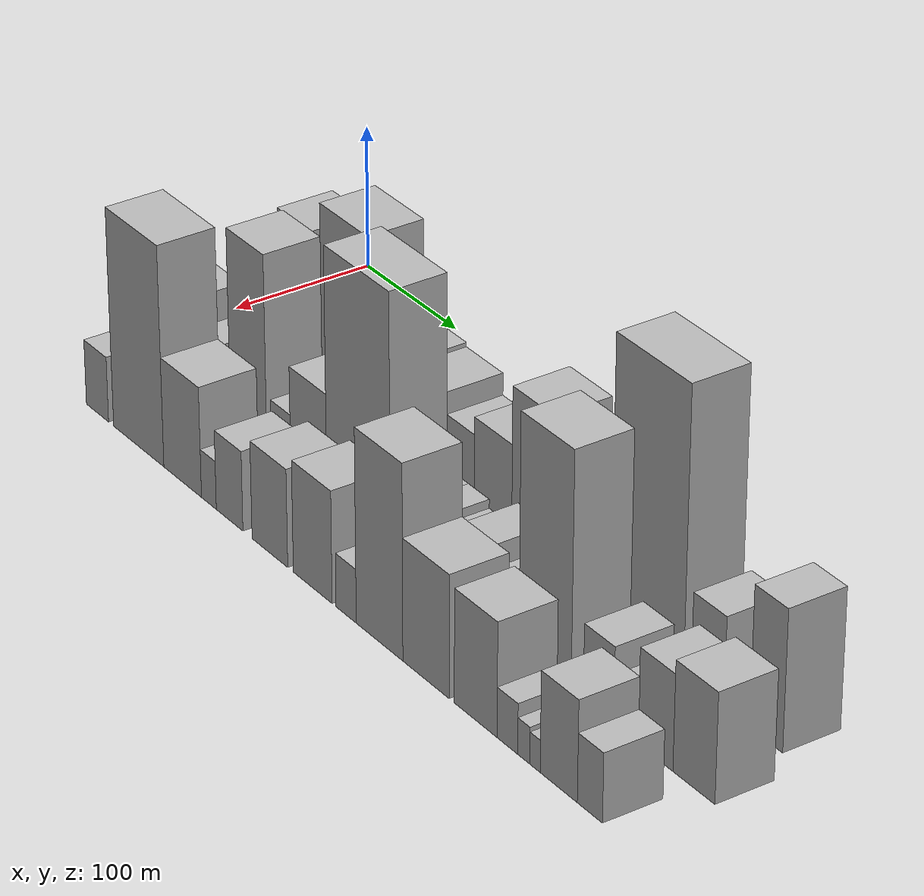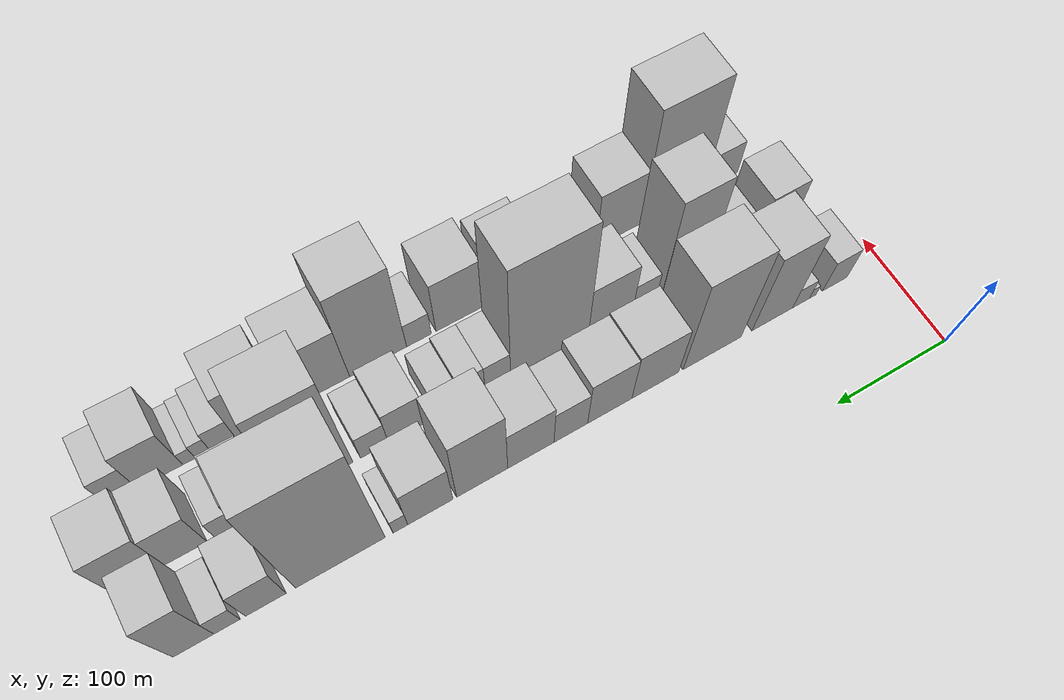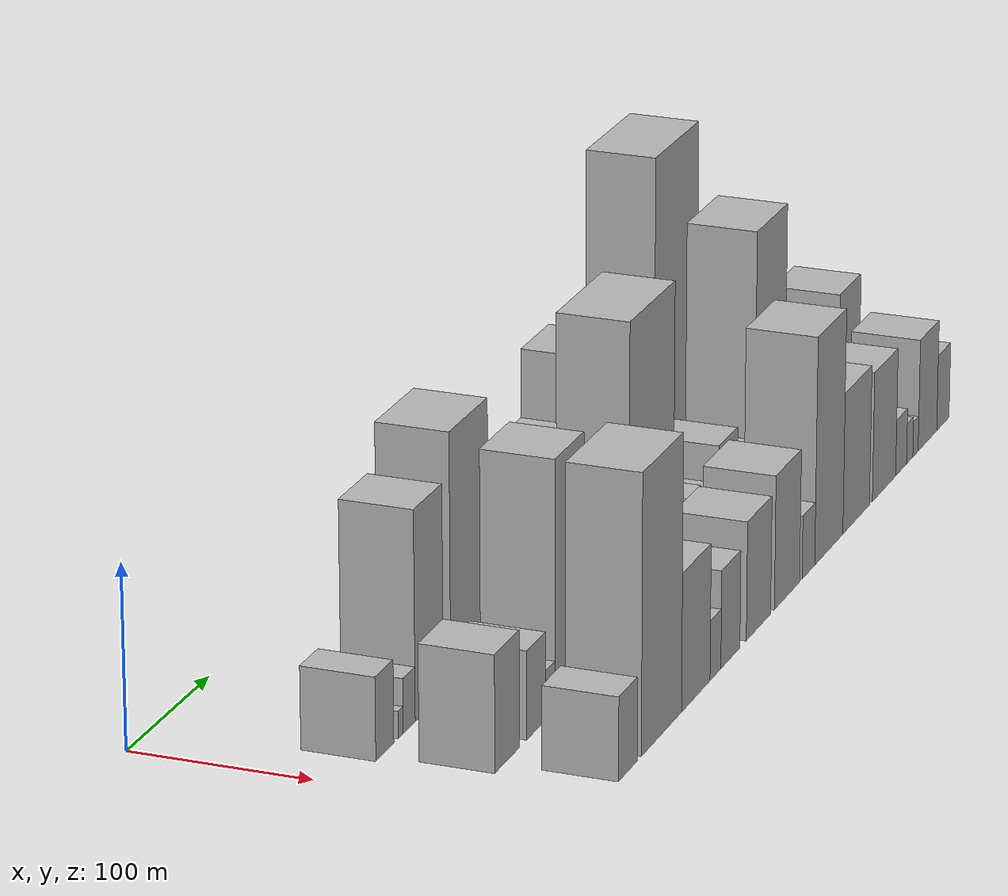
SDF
<sdf version="1.6">
 <world name="default">
  <model name="building_19">
   <static>1</static>
   <pose>100.0000 42.9198 0 0.000000 0.000000 0.000000</pose>
   <link name="link">
    <pose>0 0 22.50 0 0 0</pose>
    <collision name="collision"><geometry><box><size>40.0000 23.3706 45.0000</size></box></geometry></collision>
    <visual name="visual">
     <cast_shadows>0</cast_shadows>
     <geometry><box><size>40.0000 23.3706 45.0000</size></box></geometry>
     <material>
      <script>
       <uri>model://HANNAS_wall/materials/scripts</uri>
       <uri>model://HANNAS_wall/materials/textures</uri>
       <name>vrc/HANNAS_wall</name>
      </script>
     </material>
    </visual>
   </link>
  </model>
  <model name="building_20">
   <static>1</static>
   <pose>100.0000 63.7424 0 0.000000 0.000000 0.000000</pose>
   <link name="link">
    <pose>0 0 7.50 0 0 0</pose>
    <collision name="collision"><geometry><box><size>40.0000 6.2745 15.0000</size></box></geometry></collision>
    <visual name="visual">
     <cast_shadows>0</cast_shadows>
     <geometry><box><size>40.0000 6.2745 15.0000</size></box></geometry>
     <material>
      <script>
       <uri>model://HANNAS_wall/materials/scripts</uri>
       <uri>model://HANNAS_wall/materials/textures</uri>
       <name>vrc/HANNAS_wall</name>
      </script>
     </material>
    </visual>
   </link>
  </model>
  <model name="building_21">
   <static>1</static>
   <pose>100.0000 74.7954 0 0.000000 0.000000 0.000000</pose>
   <link name="link">
    <pose>0 0 15.00 0 0 0</pose>
    <collision name="collision"><geometry><box><size>40.0000 15.8314 30.0000</size></box></geometry></collision>
    <visual name="visual">
     <cast_shadows>0</cast_shadows>
     <geometry><box><size>40.0000 15.8314 30.0000</size></box></geometry>
     <material>
      <script>
       <uri>model://HANNAS_wall/materials/scripts</uri>
       <uri>model://HANNAS_wall/materials/textures</uri>
       <name>vrc/HANNAS_wall</name>
      </script>
     </material>
    </visual>
   </link>
  </model>
  <model name="building_22">
   <static>1</static>
   <pose>100.0000 101.5277 0 0.000000 0.000000 0.000000</pose>
   <link name="link">
    <pose>0 0 57.00 0 0 0</pose>
    <collision name="collision"><geometry><box><size>40.0000 37.6332 114.0000</size></box></geometry></collision>
    <visual name="visual">
     <cast_shadows>0</cast_shadows>
     <geometry><box><size>40.0000 37.6332 114.0000</size></box></geometry>
     <material>
      <script>
       <uri>model://HANNAS_wall/materials/scripts</uri>
       <uri>model://HANNAS_wall/materials/textures</uri>
       <name>vrc/HANNAS_wall</name>
      </script>
     </material>
    </visual>
   </link>
  </model>
  <model name="building_23">
   <static>1</static>
   <pose>100.0000 156.4455 0 0.000000 0.000000 0.000000</pose>
   <link name="link">
    <pose>0 0 69.00 0 0 0</pose>
    <collision name="collision"><geometry><box><size>40.0000 52.2026 138.0000</size></box></geometry></collision>
    <visual name="visual">
     <cast_shadows>0</cast_shadows>
     <geometry><box><size>40.0000 52.2026 138.0000</size></box></geometry>
     <material>
      <script>
       <uri>model://HANNAS_wall/materials/scripts</uri>
       <uri>model://HANNAS_wall/materials/textures</uri>
       <name>vrc/HANNAS_wall</name>
      </script>
     </material>
    </visual>
   </link>
  </model>
  <model name="building_24">
   <static>1</static>
   <pose>100.0000 207.1209 0 0.000000 0.000000 0.000000</pose>
   <link name="link">
    <pose>0 0 37.50 0 0 0</pose>
    <collision name="collision"><geometry><box><size>40.0000 41.1482 75.0000</size></box></geometry></collision>
    <visual name="visual">
     <cast_shadows>0</cast_shadows>
     <geometry><box><size>40.0000 41.1482 75.0000</size></box></geometry>
     <material>
      <script>
       <uri>model://HANNAS_wall/materials/scripts</uri>
       <uri>model://HANNAS_wall/materials/textures</uri>
       <name>vrc/HANNAS_wall</name>
      </script>
     </material>
    </visual>
   </link>
  </model>
  <model name="building_25">
   <static>1</static>
   <pose>100.0000 246.7359 0 0.000000 0.000000 0.000000</pose>
   <link name="link">
    <pose>0 0 36.00 0 0 0</pose>
    <collision name="collision"><geometry><box><size>40.0000 38.0818 72.0000</size></box></geometry></collision>
    <visual name="visual">
     <cast_shadows>0</cast_shadows>
     <geometry><box><size>40.0000 38.0818 72.0000</size></box></geometry>
     <material>
      <script>
       <uri>model://HANNAS_wall/materials/scripts</uri>
       <uri>model://HANNAS_wall/materials/textures</uri>
       <name>vrc/HANNAS_wall</name>
      </script>
     </material>
    </visual>
   </link>
  </model>
  <model name="building_26">
   <static>1</static>
   <pose>100.0000 280.0626 0 0.000000 0.000000 0.000000</pose>
   <link name="link">
    <pose>0 0 28.50 0 0 0</pose>
    <collision name="collision"><geometry><box><size>40.0000 28.5716 57.0000</size></box></geometry></collision>
    <visual name="visual">
     <cast_shadows>0</cast_shadows>
     <geometry><box><size>40.0000 28.5716 57.0000</size></box></geometry>
     <material>
      <script>
       <uri>model://HANNAS_wall/materials/scripts</uri>
       <uri>model://HANNAS_wall/materials/textures</uri>
       <name>vrc/HANNAS_wall</name>
      </script>
     </material>
    </visual>
   </link>
  </model>
  <model name="building_27">
   <static>1</static>
   <pose>100.0000 313.5556 0 0.000000 0.000000 0.000000</pose>
   <link name="link">
    <pose>0 0 34.50 0 0 0</pose>
    <collision name="collision"><geometry><box><size>40.0000 38.4144 69.0000</size></box></geometry></collision>
    <visual name="visual">
     <cast_shadows>0</cast_shadows>
     <geometry><box><size>40.0000 38.4144 69.0000</size></box></geometry>
     <material>
      <script>
       <uri>model://HANNAS_wall/materials/scripts</uri>
       <uri>model://HANNAS_wall/materials/textures</uri>
       <name>vrc/HANNAS_wall</name>
      </script>
     </material>
    </visual>
   </link>
  </model>
  <model name="building_28">
   <static>1</static>
   <pose>100.0000 353.5814 0 0.000000 0.000000 0.000000</pose>
   <link name="link">
    <pose>0 0 54.00 0 0 0</pose>
    <collision name="collision"><geometry><box><size>40.0000 41.6372 108.0000</size></box></geometry></collision>
    <visual name="visual">
     <cast_shadows>0</cast_shadows>
     <geometry><box><size>40.0000 41.6372 108.0000</size></box></geometry>
     <material>
      <script>
       <uri>model://HANNAS_wall/materials/scripts</uri>
       <uri>model://HANNAS_wall/materials/textures</uri>
       <name>vrc/HANNAS_wall</name>
      </script>
     </material>
    </visual>
   </link>
  </model>
  <model name="building_29">
   <static>1</static>
   <pose>100.0000 395.4486 0 0.000000 0.000000 0.000000</pose>
   <link name="link">
    <pose>0 0 34.50 0 0 0</pose>
    <collision name="collision"><geometry><box><size>40.0000 36.0972 69.0000</size></box></geometry></collision>
    <visual name="visual">
     <cast_shadows>0</cast_shadows>
     <geometry><box><size>40.0000 36.0972 69.0000</size></box></geometry>
     <material>
      <script>
       <uri>model://HANNAS_wall/materials/scripts</uri>
       <uri>model://HANNAS_wall/materials/textures</uri>
       <name>vrc/HANNAS_wall</name>
      </script>
     </material>
    </visual>
   </link>
  </model>
  <model name="building_30">
   <static>1</static>
   <pose>100.0000 419.2913 0 0.000000 0.000000 0.000000</pose>
   <link name="link">
    <pose>0 0 13.50 0 0 0</pose>
    <collision name="collision"><geometry><box><size>40.0000 11.5883 27.0000</size></box></geometry></collision>
    <visual name="visual">
     <cast_shadows>0</cast_shadows>
     <geometry><box><size>40.0000 11.5883 27.0000</size></box></geometry>
     <material>
      <script>
       <uri>model://HANNAS_wall/materials/scripts</uri>
       <uri>model://HANNAS_wall/materials/textures</uri>
       <name>vrc/HANNAS_wall</name>
      </script>
     </material>
    </visual>
   </link>
  </model>
  <model name="building_31">
   <static>1</static>
   <pose>100.0000 465.6862 0 0.000000 0.000000 0.000000</pose>
   <link name="link">
    <pose>0 0 94.50 0 0 0</pose>
    <collision name="collision"><geometry><box><size>40.0000 69.2014 189.0000</size></box></geometry></collision>
    <visual name="visual">
     <cast_shadows>0</cast_shadows>
     <geometry><box><size>40.0000 69.2014 189.0000</size></box></geometry>
     <material>
      <script>
       <uri>model://HANNAS_wall/materials/scripts</uri>
       <uri>model://HANNAS_wall/materials/textures</uri>
       <name>vrc/HANNAS_wall</name>
      </script>
     </material>
    </visual>
   </link>
  </model>
  <model name="building_32">
   <static>1</static>
   <pose>100.0000 522.4949 0 0.000000 0.000000 0.000000</pose>
   <link name="link">
    <pose>0 0 30.00 0 0 0</pose>
    <collision name="collision"><geometry><box><size>40.0000 30.4160 60.0000</size></box></geometry></collision>
    <visual name="visual">
     <cast_shadows>0</cast_shadows>
     <geometry><box><size>40.0000 30.4160 60.0000</size></box></geometry>
     <material>
      <script>
       <uri>model://HANNAS_wall/materials/scripts</uri>
       <uri>model://HANNAS_wall/materials/textures</uri>
       <name>vrc/HANNAS_wall</name>
      </script>
     </material>
    </visual>
   </link>
  </model>
  <model name="building_33">
   <static>1</static>
   <pose>100.0000 551.3254 0 0.000000 0.000000 0.000000</pose>
   <link name="link">
    <pose>0 0 18.00 0 0 0</pose>
    <collision name="collision"><geometry><box><size>40.0000 19.2451 36.0000</size></box></geometry></collision>
    <visual name="visual">
     <cast_shadows>0</cast_shadows>
     <geometry><box><size>40.0000 19.2451 36.0000</size></box></geometry>
     <material>
      <script>
       <uri>model://HANNAS_wall/materials/scripts</uri>
       <uri>model://HANNAS_wall/materials/textures</uri>
       <name>vrc/HANNAS_wall</name>
      </script>
     </material>
    </visual>
   </link>
  </model>
  <model name="building_34">
   <static>1</static>
   <pose>100.0000 575.7794 0 0.000000 0.000000 0.000000</pose>
   <link name="link">
    <pose>0 0 46.50 0 0 0</pose>
    <collision name="collision"><geometry><box><size>40.0000 29.6628 93.0000</size></box></geometry></collision>
    <visual name="visual">
     <cast_shadows>0</cast_shadows>
     <geometry><box><size>40.0000 29.6628 93.0000</size></box></geometry>
     <material>
      <script>
       <uri>model://HANNAS_wall/materials/scripts</uri>
       <uri>model://HANNAS_wall/materials/textures</uri>
       <name>vrc/HANNAS_wall</name>
      </script>
     </material>
    </visual>
   </link>
  </model>
  <model name="building_51">
   <static>1</static>
   <pose>160.0000 55.0556 0 0.000000 0.000000 0.000000</pose>
   <link name="link">
    <pose>0 0 31.50 0 0 0</pose>
    <collision name="collision"><geometry><box><size>40.0000 33.3329 63.0000</size></box></geometry></collision>
    <visual name="visual">
     <cast_shadows>0</cast_shadows>
     <geometry><box><size>40.0000 33.3329 63.0000</size></box></geometry>
     <material>
      <script>
       <uri>model://HANNAS_wall/materials/scripts</uri>
       <uri>model://HANNAS_wall/materials/textures</uri>
       <name>vrc/HANNAS_wall</name>
      </script>
     </material>
    </visual>
   </link>
  </model>
  <model name="building_52">
   <static>1</static>
   <pose>160.0000 94.7414 0 0.000000 0.000000 0.000000</pose>
   <link name="link">
    <pose>0 0 24.00 0 0 0</pose>
    <collision name="collision"><geometry><box><size>40.0000 26.0387 48.0000</size></box></geometry></collision>
    <visual name="visual">
     <cast_shadows>0</cast_shadows>
     <geometry><box><size>40.0000 26.0387 48.0000</size></box></geometry>
     <material>
      <script>
       <uri>model://HANNAS_wall/materials/scripts</uri>
       <uri>model://HANNAS_wall/materials/textures</uri>
       <name>vrc/HANNAS_wall</name>
      </script>
     </material>
    </visual>
   </link>
  </model>
  <model name="building_53">
   <static>1</static>
   <pose>160.0000 114.3317 0 0.000000 0.000000 0.000000</pose>
   <link name="link">
    <pose>0 0 13.50 0 0 0</pose>
    <collision name="collision"><geometry><box><size>40.0000 13.1419 27.0000</size></box></geometry></collision>
    <visual name="visual">
     <cast_shadows>0</cast_shadows>
     <geometry><box><size>40.0000 13.1419 27.0000</size></box></geometry>
     <material>
      <script>
       <uri>model://HANNAS_wall/materials/scripts</uri>
       <uri>model://HANNAS_wall/materials/textures</uri>
       <name>vrc/HANNAS_wall</name>
      </script>
     </material>
    </visual>
   </link>
  </model>
  <model name="building_54">
   <static>1</static>
   <pose>160.0000 141.3945 0 0.000000 0.000000 0.000000</pose>
   <link name="link">
    <pose>0 0 67.50 0 0 0</pose>
    <collision name="collision"><geometry><box><size>40.0000 40.9837 135.0000</size></box></geometry></collision>
    <visual name="visual">
     <cast_shadows>0</cast_shadows>
     <geometry><box><size>40.0000 40.9837 135.0000</size></box></geometry>
     <material>
      <script>
       <uri>model://HANNAS_wall/materials/scripts</uri>
       <uri>model://HANNAS_wall/materials/textures</uri>
       <name>vrc/HANNAS_wall</name>
      </script>
     </material>
    </visual>
   </link>
  </model>
  <model name="building_55">
   <static>1</static>
   <pose>160.0000 177.6371 0 0.000000 0.000000 0.000000</pose>
   <link name="link">
    <pose>0 0 19.50 0 0 0</pose>
    <collision name="collision"><geometry><box><size>40.0000 21.5014 39.0000</size></box></geometry></collision>
    <visual name="visual">
     <cast_shadows>0</cast_shadows>
     <geometry><box><size>40.0000 21.5014 39.0000</size></box></geometry>
     <material>
      <script>
       <uri>model://HANNAS_wall/materials/scripts</uri>
       <uri>model://HANNAS_wall/materials/textures</uri>
       <name>vrc/HANNAS_wall</name>
      </script>
     </material>
    </visual>
   </link>
  </model>
  <model name="building_56">
   <static>1</static>
   <pose>160.0000 208.1683 0 0.000000 0.000000 0.000000</pose>
   <link name="link">
    <pose>0 0 36.00 0 0 0</pose>
    <collision name="collision"><geometry><box><size>40.0000 39.5610 72.0000</size></box></geometry></collision>
    <visual name="visual">
     <cast_shadows>0</cast_shadows>
     <geometry><box><size>40.0000 39.5610 72.0000</size></box></geometry>
     <material>
      <script>
       <uri>model://HANNAS_wall/materials/scripts</uri>
       <uri>model://HANNAS_wall/materials/textures</uri>
       <name>vrc/HANNAS_wall</name>
      </script>
     </material>
    </visual>
   </link>
  </model>
  <model name="building_57">
   <static>1</static>
   <pose>160.0000 261.7664 0 0.000000 0.000000 0.000000</pose>
   <link name="link">
    <pose>0 0 85.50 0 0 0</pose>
    <collision name="collision"><geometry><box><size>40.0000 67.6354 171.0000</size></box></geometry></collision>
    <visual name="visual">
     <cast_shadows>0</cast_shadows>
     <geometry><box><size>40.0000 67.6354 171.0000</size></box></geometry>
     <material>
      <script>
       <uri>model://HANNAS_wall/materials/scripts</uri>
       <uri>model://HANNAS_wall/materials/textures</uri>
       <name>vrc/HANNAS_wall</name>
      </script>
     </material>
    </visual>
   </link>
  </model>
  <model name="building_58">
   <static>1</static>
   <pose>160.0000 306.4378 0 0.000000 0.000000 0.000000</pose>
   <link name="link">
    <pose>0 0 21.00 0 0 0</pose>
    <collision name="collision"><geometry><box><size>40.0000 21.7074 42.0000</size></box></geometry></collision>
    <visual name="visual">
     <cast_shadows>0</cast_shadows>
     <geometry><box><size>40.0000 21.7074 42.0000</size></box></geometry>
     <material>
      <script>
       <uri>model://HANNAS_wall/materials/scripts</uri>
       <uri>model://HANNAS_wall/materials/textures</uri>
       <name>vrc/HANNAS_wall</name>
      </script>
     </material>
    </visual>
   </link>
  </model>
  <model name="building_59">
   <static>1</static>
   <pose>160.0000 327.9131 0 0.000000 0.000000 0.000000</pose>
   <link name="link">
    <pose>0 0 21.00 0 0 0</pose>
    <collision name="collision"><geometry><box><size>40.0000 21.2432 42.0000</size></box></geometry></collision>
    <visual name="visual">
     <cast_shadows>0</cast_shadows>
     <geometry><box><size>40.0000 21.2432 42.0000</size></box></geometry>
     <material>
      <script>
       <uri>model://HANNAS_wall/materials/scripts</uri>
       <uri>model://HANNAS_wall/materials/textures</uri>
       <name>vrc/HANNAS_wall</name>
      </script>
     </material>
    </visual>
   </link>
  </model>
  <model name="building_60">
   <static>1</static>
   <pose>160.0000 348.8470 0 0.000000 0.000000 0.000000</pose>
   <link name="link">
    <pose>0 0 18.00 0 0 0</pose>
    <collision name="collision"><geometry><box><size>40.0000 20.6247 36.0000</size></box></geometry></collision>
    <visual name="visual">
     <cast_shadows>0</cast_shadows>
     <geometry><box><size>40.0000 20.6247 36.0000</size></box></geometry>
     <material>
      <script>
       <uri>model://HANNAS_wall/materials/scripts</uri>
       <uri>model://HANNAS_wall/materials/textures</uri>
       <name>vrc/HANNAS_wall</name>
      </script>
     </material>
    </visual>
   </link>
  </model>
  <model name="building_61">
   <static>1</static>
   <pose>160.0000 382.2282 0 0.000000 0.000000 0.000000</pose>
   <link name="link">
    <pose>0 0 27.00 0 0 0</pose>
    <collision name="collision"><geometry><box><size>40.0000 30.1377 54.0000</size></box></geometry></collision>
    <visual name="visual">
     <cast_shadows>0</cast_shadows>
     <geometry><box><size>40.0000 30.1377 54.0000</size></box></geometry>
     <material>
      <script>
       <uri>model://HANNAS_wall/materials/scripts</uri>
       <uri>model://HANNAS_wall/materials/textures</uri>
       <name>vrc/HANNAS_wall</name>
      </script>
     </material>
    </visual>
   </link>
  </model>
  <model name="building_62">
   <static>1</static>
   <pose>160.0000 408.6155 0 0.000000 0.000000 0.000000</pose>
   <link name="link">
    <pose>0 0 19.50 0 0 0</pose>
    <collision name="collision"><geometry><box><size>40.0000 22.6369 39.0000</size></box></geometry></collision>
    <visual name="visual">
     <cast_shadows>0</cast_shadows>
     <geometry><box><size>40.0000 22.6369 39.0000</size></box></geometry>
     <material>
      <script>
       <uri>model://HANNAS_wall/materials/scripts</uri>
       <uri>model://HANNAS_wall/materials/textures</uri>
       <name>vrc/HANNAS_wall</name>
      </script>
     </material>
    </visual>
   </link>
  </model>
  <model name="building_63">
   <static>1</static>
   <pose>160.0000 451.1949 0 0.000000 0.000000 0.000000</pose>
   <link name="link">
    <pose>0 0 78.00 0 0 0</pose>
    <collision name="collision"><geometry><box><size>40.0000 50.5220 156.0000</size></box></geometry></collision>
    <visual name="visual">
     <cast_shadows>0</cast_shadows>
     <geometry><box><size>40.0000 50.5220 156.0000</size></box></geometry>
     <material>
      <script>
       <uri>model://HANNAS_wall/materials/scripts</uri>
       <uri>model://HANNAS_wall/materials/textures</uri>
       <name>vrc/HANNAS_wall</name>
      </script>
     </material>
    </visual>
   </link>
  </model>
  <model name="building_64">
   <static>1</static>
   <pose>160.0000 479.7447 0 0.000000 0.000000 0.000000</pose>
   <link name="link">
    <pose>0 0 7.50 0 0 0</pose>
    <collision name="collision"><geometry><box><size>40.0000 6.5776 15.0000</size></box></geometry></collision>
    <visual name="visual">
     <cast_shadows>0</cast_shadows>
     <geometry><box><size>40.0000 6.5776 15.0000</size></box></geometry>
     <material>
      <script>
       <uri>model://HANNAS_wall/materials/scripts</uri>
       <uri>model://HANNAS_wall/materials/textures</uri>
       <name>vrc/HANNAS_wall</name>
      </script>
     </material>
    </visual>
   </link>
  </model>
  <model name="building_65">
   <static>1</static>
   <pose>160.0000 502.3830 0 0.000000 0.000000 0.000000</pose>
   <link name="link">
    <pose>0 0 25.50 0 0 0</pose>
    <collision name="collision"><geometry><box><size>40.0000 28.6988 51.0000</size></box></geometry></collision>
    <visual name="visual">
     <cast_shadows>0</cast_shadows>
     <geometry><box><size>40.0000 28.6988 51.0000</size></box></geometry>
     <material>
      <script>
       <uri>model://HANNAS_wall/materials/scripts</uri>
       <uri>model://HANNAS_wall/materials/textures</uri>
       <name>vrc/HANNAS_wall</name>
      </script>
     </material>
    </visual>
   </link>
  </model>
  <model name="building_66">
   <static>1</static>
   <pose>160.0000 525.1013 0 0.000000 0.000000 0.000000</pose>
   <link name="link">
    <pose>0 0 16.50 0 0 0</pose>
    <collision name="collision"><geometry><box><size>40.0000 16.7378 33.0000</size></box></geometry></collision>
    <visual name="visual">
     <cast_shadows>0</cast_shadows>
     <geometry><box><size>40.0000 16.7378 33.0000</size></box></geometry>
     <material>
      <script>
       <uri>model://HANNAS_wall/materials/scripts</uri>
       <uri>model://HANNAS_wall/materials/textures</uri>
       <name>vrc/HANNAS_wall</name>
      </script>
     </material>
    </visual>
   </link>
  </model>
  <model name="building_67">
   <static>1</static>
   <pose>160.0000 555.4003 0 0.000000 0.000000 0.000000</pose>
   <link name="link">
    <pose>0 0 31.50 0 0 0</pose>
    <collision name="collision"><geometry><box><size>40.0000 31.8603 63.0000</size></box></geometry></collision>
    <visual name="visual">
     <cast_shadows>0</cast_shadows>
     <geometry><box><size>40.0000 31.8603 63.0000</size></box></geometry>
     <material>
      <script>
       <uri>model://HANNAS_wall/materials/scripts</uri>
       <uri>model://HANNAS_wall/materials/textures</uri>
       <name>vrc/HANNAS_wall</name>
      </script>
     </material>
    </visual>
   </link>
  </model>
  <model name="building_68">
   <static>1</static>
   <pose>160.0000 590.2167 0 0.000000 0.000000 0.000000</pose>
   <link name="link">
    <pose>0 0 36.00 0 0 0</pose>
    <collision name="collision"><geometry><box><size>40.0000 37.7726 72.0000</size></box></geometry></collision>
    <visual name="visual">
     <cast_shadows>0</cast_shadows>
     <geometry><box><size>40.0000 37.7726 72.0000</size></box></geometry>
     <material>
      <script>
       <uri>model://HANNAS_wall/materials/scripts</uri>
       <uri>model://HANNAS_wall/materials/textures</uri>
       <name>vrc/HANNAS_wall</name>
      </script>
     </material>
    </visual>
   </link>
  </model>
  <model name="building_85">
   <static>1</static>
   <pose>220.0000 63.7403 0 0.000000 0.000000 0.000000</pose>
   <link name="link">
    <pose>0 0 22.50 0 0 0</pose>
    <collision name="collision"><geometry><box><size>40.0000 26.3126 45.0000</size></box></geometry></collision>
    <visual name="visual">
     <cast_shadows>0</cast_shadows>
     <geometry><box><size>40.0000 26.3126 45.0000</size></box></geometry>
     <material>
      <script>
       <uri>model://HANNAS_wall/materials/scripts</uri>
       <uri>model://HANNAS_wall/materials/textures</uri>
       <name>vrc/HANNAS_wall</name>
      </script>
     </material>
    </visual>
   </link>
  </model>
  <model name="building_86">
   <static>1</static>
   <pose>220.0000 112.1204 0 0.000000 0.000000 0.000000</pose>
   <link name="link">
    <pose>0 0 75.00 0 0 0</pose>
    <collision name="collision"><geometry><box><size>40.0000 58.4477 150.0000</size></box></geometry></collision>
    <visual name="visual">
     <cast_shadows>0</cast_shadows>
     <geometry><box><size>40.0000 58.4477 150.0000</size></box></geometry>
     <material>
      <script>
       <uri>model://HANNAS_wall/materials/scripts</uri>
       <uri>model://HANNAS_wall/materials/textures</uri>
       <name>vrc/HANNAS_wall</name>
      </script>
     </material>
    </visual>
   </link>
  </model>
  <model name="building_87">
   <static>1</static>
   <pose>220.0000 162.6892 0 0.000000 0.000000 0.000000</pose>
   <link name="link">
    <pose>0 0 37.50 0 0 0</pose>
    <collision name="collision"><geometry><box><size>40.0000 42.6900 75.0000</size></box></geometry></collision>
    <visual name="visual">
     <cast_shadows>0</cast_shadows>
     <geometry><box><size>40.0000 42.6900 75.0000</size></box></geometry>
     <material>
      <script>
       <uri>model://HANNAS_wall/materials/scripts</uri>
       <uri>model://HANNAS_wall/materials/textures</uri>
       <name>vrc/HANNAS_wall</name>
      </script>
     </material>
    </visual>
   </link>
  </model>
  <model name="building_88">
   <static>1</static>
   <pose>220.0000 192.3381 0 0.000000 0.000000 0.000000</pose>
   <link name="link">
    <pose>0 0 16.50 0 0 0</pose>
    <collision name="collision"><geometry><box><size>40.0000 16.6078 33.0000</size></box></geometry></collision>
    <visual name="visual">
     <cast_shadows>0</cast_shadows>
     <geometry><box><size>40.0000 16.6078 33.0000</size></box></geometry>
     <material>
      <script>
       <uri>model://HANNAS_wall/materials/scripts</uri>
       <uri>model://HANNAS_wall/materials/textures</uri>
       <name>vrc/HANNAS_wall</name>
      </script>
     </material>
    </visual>
   </link>
  </model>
  <model name="building_89">
   <static>1</static>
   <pose>220.0000 215.3568 0 0.000000 0.000000 0.000000</pose>
   <link name="link">
    <pose>0 0 27.00 0 0 0</pose>
    <collision name="collision"><geometry><box><size>40.0000 29.4296 54.0000</size></box></geometry></collision>
    <visual name="visual">
     <cast_shadows>0</cast_shadows>
     <geometry><box><size>40.0000 29.4296 54.0000</size></box></geometry>
     <material>
      <script>
       <uri>model://HANNAS_wall/materials/scripts</uri>
       <uri>model://HANNAS_wall/materials/textures</uri>
       <name>vrc/HANNAS_wall</name>
      </script>
     </material>
    </visual>
   </link>
  </model>
  <model name="building_90">
   <static>1</static>
   <pose>220.0000 259.3738 0 0.000000 0.000000 0.000000</pose>
   <link name="link">
    <pose>0 0 33.00 0 0 0</pose>
    <collision name="collision"><geometry><box><size>40.0000 38.6043 66.0000</size></box></geometry></collision>
    <visual name="visual">
     <cast_shadows>0</cast_shadows>
     <geometry><box><size>40.0000 38.6043 66.0000</size></box></geometry>
     <material>
      <script>
       <uri>model://HANNAS_wall/materials/scripts</uri>
       <uri>model://HANNAS_wall/materials/textures</uri>
       <name>vrc/HANNAS_wall</name>
      </script>
     </material>
    </visual>
   </link>
  </model>
  <model name="building_91">
   <static>1</static>
   <pose>220.0000 305.1838 0 0.000000 0.000000 0.000000</pose>
   <link name="link">
    <pose>0 0 37.50 0 0 0</pose>
    <collision name="collision"><geometry><box><size>40.0000 41.0159 75.0000</size></box></geometry></collision>
    <visual name="visual">
     <cast_shadows>0</cast_shadows>
     <geometry><box><size>40.0000 41.0159 75.0000</size></box></geometry>
     <material>
      <script>
       <uri>model://HANNAS_wall/materials/scripts</uri>
       <uri>model://HANNAS_wall/materials/textures</uri>
       <name>vrc/HANNAS_wall</name>
      </script>
     </material>
    </visual>
   </link>
  </model>
  <model name="building_92">
   <static>1</static>
   <pose>220.0000 340.2112 0 0.000000 0.000000 0.000000</pose>
   <link name="link">
    <pose>0 0 18.00 0 0 0</pose>
    <collision name="collision"><geometry><box><size>40.0000 21.0389 36.0000</size></box></geometry></collision>
    <visual name="visual">
     <cast_shadows>0</cast_shadows>
     <geometry><box><size>40.0000 21.0389 36.0000</size></box></geometry>
     <material>
      <script>
       <uri>model://HANNAS_wall/materials/scripts</uri>
       <uri>model://HANNAS_wall/materials/textures</uri>
       <name>vrc/HANNAS_wall</name>
      </script>
     </material>
    </visual>
   </link>
  </model>
  <model name="building_93">
   <static>1</static>
   <pose>220.0000 374.5122 0 0.000000 0.000000 0.000000</pose>
   <link name="link">
    <pose>0 0 64.50 0 0 0</pose>
    <collision name="collision"><geometry><box><size>40.0000 47.5630 129.0000</size></box></geometry></collision>
    <visual name="visual">
     <cast_shadows>0</cast_shadows>
     <geometry><box><size>40.0000 47.5630 129.0000</size></box></geometry>
     <material>
      <script>
       <uri>model://HANNAS_wall/materials/scripts</uri>
       <uri>model://HANNAS_wall/materials/textures</uri>
       <name>vrc/HANNAS_wall</name>
      </script>
     </material>
    </visual>
   </link>
  </model>
  <model name="building_94">
   <static>1</static>
   <pose>220.0000 421.3610 0 0.000000 0.000000 0.000000</pose>
   <link name="link">
    <pose>0 0 40.50 0 0 0</pose>
    <collision name="collision"><geometry><box><size>40.0000 46.1346 81.0000</size></box></geometry></collision>
    <visual name="visual">
     <cast_shadows>0</cast_shadows>
     <geometry><box><size>40.0000 46.1346 81.0000</size></box></geometry>
     <material>
      <script>
       <uri>model://HANNAS_wall/materials/scripts</uri>
       <uri>model://HANNAS_wall/materials/textures</uri>
       <name>vrc/HANNAS_wall</name>
      </script>
     </material>
    </visual>
   </link>
  </model>
  <model name="building_95">
   <static>1</static>
   <pose>220.0000 470.1678 0 0.000000 0.000000 0.000000</pose>
   <link name="link">
    <pose>0 0 37.50 0 0 0</pose>
    <collision name="collision"><geometry><box><size>40.0000 41.4790 75.0000</size></box></geometry></collision>
    <visual name="visual">
     <cast_shadows>0</cast_shadows>
     <geometry><box><size>40.0000 41.4790 75.0000</size></box></geometry>
     <material>
      <script>
       <uri>model://HANNAS_wall/materials/scripts</uri>
       <uri>model://HANNAS_wall/materials/textures</uri>
       <name>vrc/HANNAS_wall</name>
      </script>
     </material>
    </visual>
   </link>
  </model>
  <model name="building_96">
   <static>1</static>
   <pose>220.0000 500.7581 0 0.000000 0.000000 0.000000</pose>
   <link name="link">
    <pose>0 0 16.50 0 0 0</pose>
    <collision name="collision"><geometry><box><size>40.0000 19.7017 33.0000</size></box></geometry></collision>
    <visual name="visual">
     <cast_shadows>0</cast_shadows>
     <geometry><box><size>40.0000 19.7017 33.0000</size></box></geometry>
     <material>
      <script>
       <uri>model://HANNAS_wall/materials/scripts</uri>
       <uri>model://HANNAS_wall/materials/textures</uri>
       <name>vrc/HANNAS_wall</name>
      </script>
     </material>
    </visual>
   </link>
  </model>
  <model name="building_97">
   <static>1</static>
   <pose>220.0000 516.3491 0 0.000000 0.000000 0.000000</pose>
   <link name="link">
    <pose>0 0 12.00 0 0 0</pose>
    <collision name="collision"><geometry><box><size>40.0000 11.4802 24.0000</size></box></geometry></collision>
    <visual name="visual">
     <cast_shadows>0</cast_shadows>
     <geometry><box><size>40.0000 11.4802 24.0000</size></box></geometry>
     <material>
      <script>
       <uri>model://HANNAS_wall/materials/scripts</uri>
       <uri>model://HANNAS_wall/materials/textures</uri>
       <name>vrc/HANNAS_wall</name>
      </script>
     </material>
    </visual>
   </link>
  </model>
  <model name="building_98">
   <static>1</static>
   <pose>220.0000 526.9370 0 0.000000 0.000000 0.000000</pose>
   <link name="link">
    <pose>0 0 10.50 0 0 0</pose>
    <collision name="collision"><geometry><box><size>40.0000 9.6957 21.0000</size></box></geometry></collision>
    <visual name="visual">
     <cast_shadows>0</cast_shadows>
     <geometry><box><size>40.0000 9.6957 21.0000</size></box></geometry>
     <material>
      <script>
       <uri>model://HANNAS_wall/materials/scripts</uri>
       <uri>model://HANNAS_wall/materials/textures</uri>
       <name>vrc/HANNAS_wall</name>
      </script>
     </material>
    </visual>
   </link>
  </model>
  <model name="building_99">
   <static>1</static>
   <pose>220.0000 549.0384 0 0.000000 0.000000 0.000000</pose>
   <link name="link">
    <pose>0 0 33.00 0 0 0</pose>
    <collision name="collision"><geometry><box><size>40.0000 34.5071 66.0000</size></box></geometry></collision>
    <visual name="visual">
     <cast_shadows>0</cast_shadows>
     <geometry><box><size>40.0000 34.5071 66.0000</size></box></geometry>
     <material>
      <script>
       <uri>model://HANNAS_wall/materials/scripts</uri>
       <uri>model://HANNAS_wall/materials/textures</uri>
       <name>vrc/HANNAS_wall</name>
      </script>
     </material>
    </visual>
   </link>
  </model>
  <model name="building_100">
   <static>1</static>
   <pose>220.0000 577.8208 0 0.000000 0.000000 0.000000</pose>
   <link name="link">
    <pose>0 0 22.50 0 0 0</pose>
    <collision name="collision"><geometry><box><size>40.0000 23.0578 45.0000</size></box></geometry></collision>
    <visual name="visual">
     <cast_shadows>0</cast_shadows>
     <geometry><box><size>40.0000 23.0578 45.0000</size></box></geometry>
     <material>
      <script>
       <uri>model://HANNAS_wall/materials/scripts</uri>
       <uri>model://HANNAS_wall/materials/textures</uri>
       <name>vrc/HANNAS_wall</name>
      </script>
     </material>
    </visual>
   </link>
  </model>
 </world>
</sdf>
